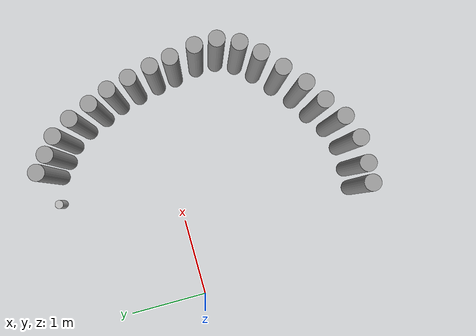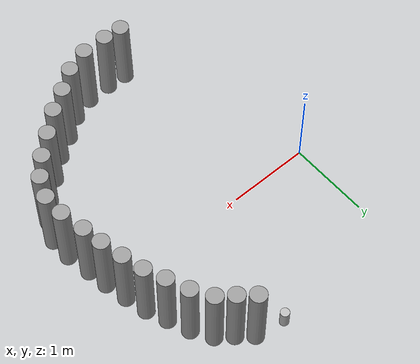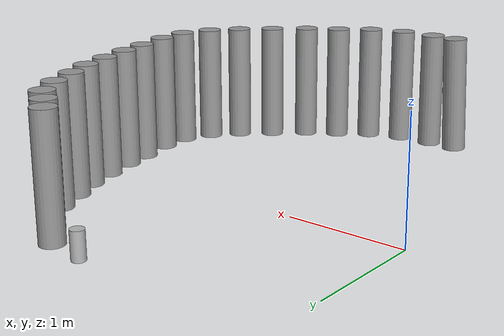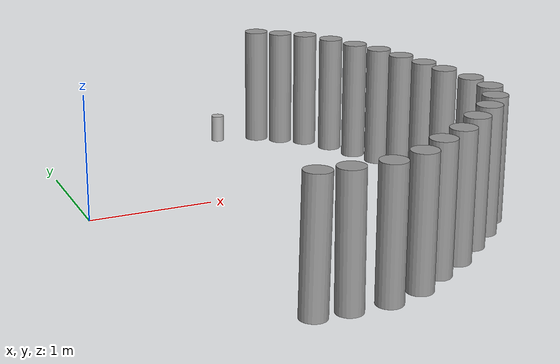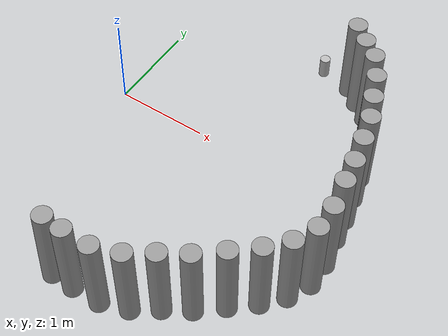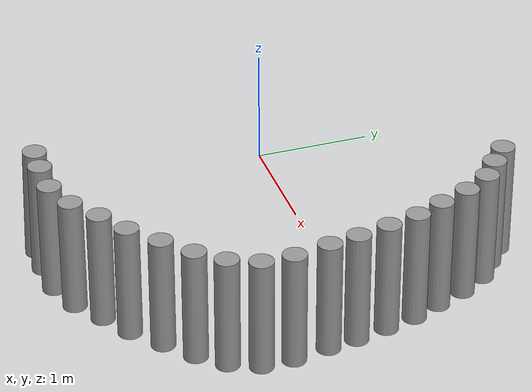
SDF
<sdf version="1.6">
 <world name="default">
  <model name="small_cylinder_0_clone_0">
   <link name="link">
    <inertial>
     <mass>1</mass>
     <inertia><ixx>0.145833</ixx><ixy>0</ixy><ixz>0</ixz><iyy>0.145833</iyy><iyz>0</iyz><izz>0.125</izz></inertia>
    </inertial>
    <visual name="visual">
     <geometry><cylinder><radius>0.1</radius><length>1</length></cylinder></geometry>
     <material>
      <script><name>Gazebo/Grey</name><uri>file://media/materials/scripts/gazebo.material</uri></script>
      <ambient>0.3 0.3 0.3 1</ambient>
      <diffuse>0.7 0.7 0.7 1</diffuse>
      <specular>0.01 0.01 0.01 1</specular>
      <emissive>0 0 0 1</emissive>
      <shader type="vertex"><normal_map>__default__</normal_map></shader>
     </material>
    </visual>
    <collision name="collision">
     <geometry><cylinder><radius>0.1</radius><length>1</length></cylinder></geometry>
     <surface>
      <friction>
       <ode><mu>1</mu><mu2>1</mu2><fdir1>0 0 0</fdir1><slip1>0</slip1><slip2>0</slip2></ode>
       <torsional>
        <coefficient>1</coefficient>
        <patch_radius>0</patch_radius>
        <surface_radius>0</surface_radius>
        <use_patch_radius>1</use_patch_radius>
        <ode><slip>0</slip></ode>
       </torsional>
      </friction>
      <bounce><restitution_coefficient>0</restitution_coefficient><threshold>1e+06</threshold></bounce>
      <contact>
       <collide_without_contact>0</collide_without_contact>
       <collide_without_contact_bitmask>1</collide_without_contact_bitmask>
       <collide_bitmask>1</collide_bitmask>
       <ode>
        <soft_cfm>0</soft_cfm>
        <soft_erp>0.2</soft_erp>
        <kp>1e+13</kp>
        <kd>1</kd>
        <max_vel>0.01</max_vel>
        <min_depth>0</min_depth>
       </ode>
       <bullet>
        <split_impulse>1</split_impulse>
        <split_impulse_penetration_threshold>-0.01</split_impulse_penetration_threshold>
        <soft_cfm>0</soft_cfm>
        <soft_erp>0.2</soft_erp>
        <kp>1e+13</kp>
        <kd>1</kd>
       </bullet>
      </contact>
     </surface>
    </collision>
   </link>
   <static>1</static>
   <pose>2.8271 -1.1924 0.499121 0 6e-06 -0.010915</pose>
  </model>
  <model name="small_cylinder_0_clone_1">
   <link name="link">
    <inertial>
     <mass>1</mass>
     <inertia><ixx>0.145833</ixx><ixy>0</ixy><ixz>0</ixz><iyy>0.145833</iyy><iyz>0</iyz><izz>0.125</izz></inertia>
    </inertial>
    <visual name="visual">
     <geometry><cylinder><radius>0.1</radius><length>1</length></cylinder></geometry>
     <material>
      <script><name>Gazebo/Grey</name><uri>file://media/materials/scripts/gazebo.material</uri></script>
      <ambient>0.3 0.3 0.3 1</ambient>
      <diffuse>0.7 0.7 0.7 1</diffuse>
      <specular>0.01 0.01 0.01 1</specular>
      <emissive>0 0 0 1</emissive>
      <shader type="vertex"><normal_map>__default__</normal_map></shader>
     </material>
    </visual>
    <collision name="collision">
     <geometry><cylinder><radius>0.1</radius><length>1</length></cylinder></geometry>
     <surface>
      <friction>
       <ode><mu>1</mu><mu2>1</mu2><fdir1>0 0 0</fdir1><slip1>0</slip1><slip2>0</slip2></ode>
       <torsional>
        <coefficient>1</coefficient>
        <patch_radius>0</patch_radius>
        <surface_radius>0</surface_radius>
        <use_patch_radius>1</use_patch_radius>
        <ode><slip>0</slip></ode>
       </torsional>
      </friction>
      <bounce><restitution_coefficient>0</restitution_coefficient><threshold>1e+06</threshold></bounce>
      <contact>
       <collide_without_contact>0</collide_without_contact>
       <collide_without_contact_bitmask>1</collide_without_contact_bitmask>
       <collide_bitmask>1</collide_bitmask>
       <ode>
        <soft_cfm>0</soft_cfm>
        <soft_erp>0.2</soft_erp>
        <kp>1e+13</kp>
        <kd>1</kd>
        <max_vel>0.01</max_vel>
        <min_depth>0</min_depth>
       </ode>
       <bullet>
        <split_impulse>1</split_impulse>
        <split_impulse_penetration_threshold>-0.01</split_impulse_penetration_threshold>
        <soft_cfm>0</soft_cfm>
        <soft_erp>0.2</soft_erp>
        <kp>1e+13</kp>
        <kd>1</kd>
       </bullet>
      </contact>
     </surface>
    </collision>
   </link>
   <static>1</static>
   <pose>2.64692 -1.39777 0.499121 0 6e-06 -0.010887</pose>
  </model>
  <model name="small_cylinder_0_clone_2">
   <link name="link">
    <inertial>
     <mass>1</mass>
     <inertia><ixx>0.145833</ixx><ixy>0</ixy><ixz>0</ixz><iyy>0.145833</iyy><iyz>0</iyz><izz>0.125</izz></inertia>
    </inertial>
    <visual name="visual">
     <geometry><cylinder><radius>0.1</radius><length>1</length></cylinder></geometry>
     <material>
      <script><name>Gazebo/Grey</name><uri>file://media/materials/scripts/gazebo.material</uri></script>
      <ambient>0.3 0.3 0.3 1</ambient>
      <diffuse>0.7 0.7 0.7 1</diffuse>
      <specular>0.01 0.01 0.01 1</specular>
      <emissive>0 0 0 1</emissive>
      <shader type="vertex"><normal_map>__default__</normal_map></shader>
     </material>
    </visual>
    <collision name="collision">
     <geometry><cylinder><radius>0.1</radius><length>1</length></cylinder></geometry>
     <surface>
      <friction>
       <ode><mu>1</mu><mu2>1</mu2><fdir1>0 0 0</fdir1><slip1>0</slip1><slip2>0</slip2></ode>
       <torsional>
        <coefficient>1</coefficient>
        <patch_radius>0</patch_radius>
        <surface_radius>0</surface_radius>
        <use_patch_radius>1</use_patch_radius>
        <ode><slip>0</slip></ode>
       </torsional>
      </friction>
      <bounce><restitution_coefficient>0</restitution_coefficient><threshold>1e+06</threshold></bounce>
      <contact>
       <collide_without_contact>0</collide_without_contact>
       <collide_without_contact_bitmask>1</collide_without_contact_bitmask>
       <collide_bitmask>1</collide_bitmask>
       <ode>
        <soft_cfm>0</soft_cfm>
        <soft_erp>0.2</soft_erp>
        <kp>1e+13</kp>
        <kd>1</kd>
        <max_vel>0.01</max_vel>
        <min_depth>0</min_depth>
       </ode>
       <bullet>
        <split_impulse>1</split_impulse>
        <split_impulse_penetration_threshold>-0.01</split_impulse_penetration_threshold>
        <soft_cfm>0</soft_cfm>
        <soft_erp>0.2</soft_erp>
        <kp>1e+13</kp>
        <kd>1</kd>
       </bullet>
      </contact>
     </surface>
    </collision>
   </link>
   <static>1</static>
   <pose>2.418 -1.59621 0.499121 0 6e-06 -0.01088</pose>
  </model>
  <model name="small_cylinder_0_clone_3">
   <link name="link">
    <inertial>
     <mass>1</mass>
     <inertia><ixx>0.145833</ixx><ixy>0</ixy><ixz>0</ixz><iyy>0.145833</iyy><iyz>0</iyz><izz>0.125</izz></inertia>
    </inertial>
    <visual name="visual">
     <geometry><cylinder><radius>0.1</radius><length>1</length></cylinder></geometry>
     <material>
      <script><name>Gazebo/Grey</name><uri>file://media/materials/scripts/gazebo.material</uri></script>
      <ambient>0.3 0.3 0.3 1</ambient>
      <diffuse>0.7 0.7 0.7 1</diffuse>
      <specular>0.01 0.01 0.01 1</specular>
      <emissive>0 0 0 1</emissive>
      <shader type="vertex"><normal_map>__default__</normal_map></shader>
     </material>
    </visual>
    <collision name="collision">
     <geometry><cylinder><radius>0.1</radius><length>1</length></cylinder></geometry>
     <surface>
      <friction>
       <ode><mu>1</mu><mu2>1</mu2><fdir1>0 0 0</fdir1><slip1>0</slip1><slip2>0</slip2></ode>
       <torsional>
        <coefficient>1</coefficient>
        <patch_radius>0</patch_radius>
        <surface_radius>0</surface_radius>
        <use_patch_radius>1</use_patch_radius>
        <ode><slip>0</slip></ode>
       </torsional>
      </friction>
      <bounce><restitution_coefficient>0</restitution_coefficient><threshold>1e+06</threshold></bounce>
      <contact>
       <collide_without_contact>0</collide_without_contact>
       <collide_without_contact_bitmask>1</collide_without_contact_bitmask>
       <collide_bitmask>1</collide_bitmask>
       <ode>
        <soft_cfm>0</soft_cfm>
        <soft_erp>0.2</soft_erp>
        <kp>1e+13</kp>
        <kd>1</kd>
        <max_vel>0.01</max_vel>
        <min_depth>0</min_depth>
       </ode>
       <bullet>
        <split_impulse>1</split_impulse>
        <split_impulse_penetration_threshold>-0.01</split_impulse_penetration_threshold>
        <soft_cfm>0</soft_cfm>
        <soft_erp>0.2</soft_erp>
        <kp>1e+13</kp>
        <kd>1</kd>
       </bullet>
      </contact>
     </surface>
    </collision>
   </link>
   <static>1</static>
   <pose>2.17816 -1.80058 0.499121 0 6e-06 -0.010876</pose>
  </model>
  <model name="small_cylinder_0_clone_4">
   <link name="link">
    <inertial>
     <mass>1</mass>
     <inertia><ixx>0.145833</ixx><ixy>0</ixy><ixz>0</ixz><iyy>0.145833</iyy><iyz>0</iyz><izz>0.125</izz></inertia>
    </inertial>
    <visual name="visual">
     <geometry><cylinder><radius>0.1</radius><length>1</length></cylinder></geometry>
     <material>
      <script><name>Gazebo/Grey</name><uri>file://media/materials/scripts/gazebo.material</uri></script>
      <ambient>0.3 0.3 0.3 1</ambient>
      <diffuse>0.7 0.7 0.7 1</diffuse>
      <specular>0.01 0.01 0.01 1</specular>
      <emissive>0 0 0 1</emissive>
      <shader type="vertex"><normal_map>__default__</normal_map></shader>
     </material>
    </visual>
    <collision name="collision">
     <geometry><cylinder><radius>0.1</radius><length>1</length></cylinder></geometry>
     <surface>
      <friction>
       <ode><mu>1</mu><mu2>1</mu2><fdir1>0 0 0</fdir1><slip1>0</slip1><slip2>0</slip2></ode>
       <torsional>
        <coefficient>1</coefficient>
        <patch_radius>0</patch_radius>
        <surface_radius>0</surface_radius>
        <use_patch_radius>1</use_patch_radius>
        <ode><slip>0</slip></ode>
       </torsional>
      </friction>
      <bounce><restitution_coefficient>0</restitution_coefficient><threshold>1e+06</threshold></bounce>
      <contact>
       <collide_without_contact>0</collide_without_contact>
       <collide_without_contact_bitmask>1</collide_without_contact_bitmask>
       <collide_bitmask>1</collide_bitmask>
       <ode>
        <soft_cfm>0</soft_cfm>
        <soft_erp>0.2</soft_erp>
        <kp>1e+13</kp>
        <kd>1</kd>
        <max_vel>0.01</max_vel>
        <min_depth>0</min_depth>
       </ode>
       <bullet>
        <split_impulse>1</split_impulse>
        <split_impulse_penetration_threshold>-0.01</split_impulse_penetration_threshold>
        <soft_cfm>0</soft_cfm>
        <soft_erp>0.2</soft_erp>
        <kp>1e+13</kp>
        <kd>1</kd>
       </bullet>
      </contact>
     </surface>
    </collision>
   </link>
   <static>1</static>
   <pose>1.92933 -1.95531 0.499121 0 6e-06 -0.01088</pose>
  </model>
  <model name="small_cylinder_0_clone_5">
   <link name="link">
    <inertial>
     <mass>1</mass>
     <inertia><ixx>0.145833</ixx><ixy>0</ixy><ixz>0</ixz><iyy>0.145833</iyy><iyz>0</iyz><izz>0.125</izz></inertia>
    </inertial>
    <visual name="visual">
     <geometry><cylinder><radius>0.1</radius><length>1</length></cylinder></geometry>
     <material>
      <script><name>Gazebo/Grey</name><uri>file://media/materials/scripts/gazebo.material</uri></script>
      <ambient>0.3 0.3 0.3 1</ambient>
      <diffuse>0.7 0.7 0.7 1</diffuse>
      <specular>0.01 0.01 0.01 1</specular>
      <emissive>0 0 0 1</emissive>
      <shader type="vertex"><normal_map>__default__</normal_map></shader>
     </material>
    </visual>
    <collision name="collision">
     <geometry><cylinder><radius>0.1</radius><length>1</length></cylinder></geometry>
     <surface>
      <friction>
       <ode><mu>1</mu><mu2>1</mu2><fdir1>0 0 0</fdir1><slip1>0</slip1><slip2>0</slip2></ode>
       <torsional>
        <coefficient>1</coefficient>
        <patch_radius>0</patch_radius>
        <surface_radius>0</surface_radius>
        <use_patch_radius>1</use_patch_radius>
        <ode><slip>0</slip></ode>
       </torsional>
      </friction>
      <bounce><restitution_coefficient>0</restitution_coefficient><threshold>1e+06</threshold></bounce>
      <contact>
       <collide_without_contact>0</collide_without_contact>
       <collide_without_contact_bitmask>1</collide_without_contact_bitmask>
       <collide_bitmask>1</collide_bitmask>
       <ode>
        <soft_cfm>0</soft_cfm>
        <soft_erp>0.2</soft_erp>
        <kp>1e+13</kp>
        <kd>1</kd>
        <max_vel>0.01</max_vel>
        <min_depth>0</min_depth>
       </ode>
       <bullet>
        <split_impulse>1</split_impulse>
        <split_impulse_penetration_threshold>-0.01</split_impulse_penetration_threshold>
        <soft_cfm>0</soft_cfm>
        <soft_erp>0.2</soft_erp>
        <kp>1e+13</kp>
        <kd>1</kd>
       </bullet>
      </contact>
     </surface>
    </collision>
   </link>
   <static>1</static>
   <pose>1.68697 -2.12406 0.499121 -0 6e-06 -0.0109</pose>
  </model>
  <model name="small_cylinder_0_clone_6">
   <link name="link">
    <inertial>
     <mass>1</mass>
     <inertia><ixx>0.145833</ixx><ixy>0</ixy><ixz>0</ixz><iyy>0.145833</iyy><iyz>0</iyz><izz>0.125</izz></inertia>
    </inertial>
    <visual name="visual">
     <geometry><cylinder><radius>0.1</radius><length>1</length></cylinder></geometry>
     <material>
      <script><name>Gazebo/Grey</name><uri>file://media/materials/scripts/gazebo.material</uri></script>
      <ambient>0.3 0.3 0.3 1</ambient>
      <diffuse>0.7 0.7 0.7 1</diffuse>
      <specular>0.01 0.01 0.01 1</specular>
      <emissive>0 0 0 1</emissive>
      <shader type="vertex"><normal_map>__default__</normal_map></shader>
     </material>
    </visual>
    <collision name="collision">
     <geometry><cylinder><radius>0.1</radius><length>1</length></cylinder></geometry>
     <surface>
      <friction>
       <ode><mu>1</mu><mu2>1</mu2><fdir1>0 0 0</fdir1><slip1>0</slip1><slip2>0</slip2></ode>
       <torsional>
        <coefficient>1</coefficient>
        <patch_radius>0</patch_radius>
        <surface_radius>0</surface_radius>
        <use_patch_radius>1</use_patch_radius>
        <ode><slip>0</slip></ode>
       </torsional>
      </friction>
      <bounce><restitution_coefficient>0</restitution_coefficient><threshold>1e+06</threshold></bounce>
      <contact>
       <collide_without_contact>0</collide_without_contact>
       <collide_without_contact_bitmask>1</collide_without_contact_bitmask>
       <collide_bitmask>1</collide_bitmask>
       <ode>
        <soft_cfm>0</soft_cfm>
        <soft_erp>0.2</soft_erp>
        <kp>1e+13</kp>
        <kd>1</kd>
        <max_vel>0.01</max_vel>
        <min_depth>0</min_depth>
       </ode>
       <bullet>
        <split_impulse>1</split_impulse>
        <split_impulse_penetration_threshold>-0.01</split_impulse_penetration_threshold>
        <soft_cfm>0</soft_cfm>
        <soft_erp>0.2</soft_erp>
        <kp>1e+13</kp>
        <kd>1</kd>
       </bullet>
      </contact>
     </surface>
    </collision>
   </link>
   <static>1</static>
   <pose>1.40397 -2.22186 0.499121 0 -6e-06 0.008928</pose>
  </model>
  <model name="small_cylinder_0_clone_7">
   <link name="link">
    <inertial>
     <mass>1</mass>
     <inertia><ixx>0.145833</ixx><ixy>0</ixy><ixz>0</ixz><iyy>0.145833</iyy><iyz>0</iyz><izz>0.125</izz></inertia>
    </inertial>
    <visual name="visual">
     <geometry><cylinder><radius>0.1</radius><length>1</length></cylinder></geometry>
     <material>
      <script><name>Gazebo/Grey</name><uri>file://media/materials/scripts/gazebo.material</uri></script>
      <ambient>0.3 0.3 0.3 1</ambient>
      <diffuse>0.7 0.7 0.7 1</diffuse>
      <specular>0.01 0.01 0.01 1</specular>
      <emissive>0 0 0 1</emissive>
      <shader type="vertex"><normal_map>__default__</normal_map></shader>
     </material>
    </visual>
    <collision name="collision">
     <geometry><cylinder><radius>0.1</radius><length>1</length></cylinder></geometry>
     <surface>
      <friction>
       <ode><mu>1</mu><mu2>1</mu2><fdir1>0 0 0</fdir1><slip1>0</slip1><slip2>0</slip2></ode>
       <torsional>
        <coefficient>1</coefficient>
        <patch_radius>0</patch_radius>
        <surface_radius>0</surface_radius>
        <use_patch_radius>1</use_patch_radius>
        <ode><slip>0</slip></ode>
       </torsional>
      </friction>
      <bounce><restitution_coefficient>0</restitution_coefficient><threshold>1e+06</threshold></bounce>
      <contact>
       <collide_without_contact>0</collide_without_contact>
       <collide_without_contact_bitmask>1</collide_without_contact_bitmask>
       <collide_bitmask>1</collide_bitmask>
       <ode>
        <soft_cfm>0</soft_cfm>
        <soft_erp>0.2</soft_erp>
        <kp>1e+13</kp>
        <kd>1</kd>
        <max_vel>0.01</max_vel>
        <min_depth>0</min_depth>
       </ode>
       <bullet>
        <split_impulse>1</split_impulse>
        <split_impulse_penetration_threshold>-0.01</split_impulse_penetration_threshold>
        <soft_cfm>0</soft_cfm>
        <soft_erp>0.2</soft_erp>
        <kp>1e+13</kp>
        <kd>1</kd>
       </bullet>
      </contact>
     </surface>
    </collision>
   </link>
   <static>1</static>
   <pose>1.10145 -2.22877 0.50125 -0.010495 -0.00771 -0.658429</pose>
  </model>
  <model name="small_cylinder_0_clone_8">
   <link name="link">
    <inertial>
     <mass>1</mass>
     <inertia><ixx>0.145833</ixx><ixy>0</ixy><ixz>0</ixz><iyy>0.145833</iyy><iyz>0</iyz><izz>0.125</izz></inertia>
    </inertial>
    <visual name="visual">
     <geometry><cylinder><radius>0.1</radius><length>1</length></cylinder></geometry>
     <material>
      <script><name>Gazebo/Grey</name><uri>file://media/materials/scripts/gazebo.material</uri></script>
      <ambient>0.3 0.3 0.3 1</ambient>
      <diffuse>0.7 0.7 0.7 1</diffuse>
      <specular>0.01 0.01 0.01 1</specular>
      <emissive>0 0 0 1</emissive>
      <shader type="vertex"><normal_map>__default__</normal_map></shader>
     </material>
    </visual>
    <collision name="collision">
     <geometry><cylinder><radius>0.1</radius><length>1</length></cylinder></geometry>
     <surface>
      <friction>
       <ode><mu>1</mu><mu2>1</mu2><fdir1>0 0 0</fdir1><slip1>0</slip1><slip2>0</slip2></ode>
       <torsional>
        <coefficient>1</coefficient>
        <patch_radius>0</patch_radius>
        <surface_radius>0</surface_radius>
        <use_patch_radius>1</use_patch_radius>
        <ode><slip>0</slip></ode>
       </torsional>
      </friction>
      <bounce><restitution_coefficient>0</restitution_coefficient><threshold>1e+06</threshold></bounce>
      <contact>
       <collide_without_contact>0</collide_without_contact>
       <collide_without_contact_bitmask>1</collide_without_contact_bitmask>
       <collide_bitmask>1</collide_bitmask>
       <ode>
        <soft_cfm>0</soft_cfm>
        <soft_erp>0.2</soft_erp>
        <kp>1e+13</kp>
        <kd>1</kd>
        <max_vel>0.01</max_vel>
        <min_depth>0</min_depth>
       </ode>
       <bullet>
        <split_impulse>1</split_impulse>
        <split_impulse_penetration_threshold>-0.01</split_impulse_penetration_threshold>
        <soft_cfm>0</soft_cfm>
        <soft_erp>0.2</soft_erp>
        <kp>1e+13</kp>
        <kd>1</kd>
       </bullet>
      </contact>
     </surface>
    </collision>
   </link>
   <static>1</static>
   <pose>0.859339 -2.21794 0.50312 -0.007979 -0.033217 -2.34045</pose>
  </model>
  <model name="beer_clone">
   <link name="link">
    <pose>0 0 0.115 0 -0 0</pose>
    <inertial>
     <mass>0.39</mass>
     <inertia><ixx>0.00058</ixx><ixy>0</ixy><ixz>0</ixz><iyy>0.00058</iyy><iyz>0</iyz><izz>0.00019</izz></inertia>
    </inertial>
    <collision name="collision">
     <geometry><cylinder><radius>0.055</radius><length>0.23</length></cylinder></geometry>
    </collision>
    <visual name="visual">
     <geometry><cylinder><radius>0.055</radius><length>0.23</length></cylinder></geometry>
     <material>
      <script>
       <uri>model://beer/materials/scripts</uri>
       <uri>model://beer/materials/textures</uri>
       <name>Beer/Diffuse</name>
      </script>
     </material>
    </visual>
   </link>
   <pose>1.64455 1.50495 -0.00088 6e-06 -5.1e-05 1.64738</pose>
  </model>
  <model name="small_cylinder_0_clone_clone_20">
   <link name="link">
    <inertial>
     <mass>1</mass>
     <inertia><ixx>0.145833</ixx><ixy>0</ixy><ixz>0</ixz><iyy>0.145833</iyy><iyz>0</iyz><izz>0.125</izz></inertia>
    </inertial>
    <visual name="visual">
     <geometry><cylinder><radius>0.1</radius><length>1</length></cylinder></geometry>
     <material>
      <script><name>Gazebo/Grey</name><uri>file://media/materials/scripts/gazebo.material</uri></script>
      <ambient>0.3 0.3 0.3 1</ambient>
      <diffuse>0.7 0.7 0.7 1</diffuse>
      <specular>0.01 0.01 0.01 1</specular>
      <emissive>0 0 0 1</emissive>
      <shader type="vertex"><normal_map>__default__</normal_map></shader>
     </material>
    </visual>
    <collision name="collision">
     <geometry><cylinder><radius>0.1</radius><length>1</length></cylinder></geometry>
     <surface>
      <friction>
       <ode><mu>1</mu><mu2>1</mu2><fdir1>0 0 0</fdir1><slip1>0</slip1><slip2>0</slip2></ode>
       <torsional>
        <coefficient>1</coefficient>
        <patch_radius>0</patch_radius>
        <surface_radius>0</surface_radius>
        <use_patch_radius>1</use_patch_radius>
        <ode><slip>0</slip></ode>
       </torsional>
      </friction>
      <bounce><restitution_coefficient>0</restitution_coefficient><threshold>1e+06</threshold></bounce>
      <contact>
       <collide_without_contact>0</collide_without_contact>
       <collide_without_contact_bitmask>1</collide_without_contact_bitmask>
       <collide_bitmask>1</collide_bitmask>
       <ode>
        <soft_cfm>0</soft_cfm>
        <soft_erp>0.2</soft_erp>
        <kp>1e+13</kp>
        <kd>1</kd>
        <max_vel>0.01</max_vel>
        <min_depth>0</min_depth>
       </ode>
       <bullet>
        <split_impulse>1</split_impulse>
        <split_impulse_penetration_threshold>-0.01</split_impulse_penetration_threshold>
        <soft_cfm>0</soft_cfm>
        <soft_erp>0.2</soft_erp>
        <kp>1e+13</kp>
        <kd>1</kd>
       </bullet>
      </contact>
     </surface>
    </collision>
   </link>
   <static>1</static>
   <pose>2.93611 -0.950237 0.499121 0 6e-06 -0.009753</pose>
  </model>
  <model name="small_cylinder_0_clone_clone_21">
   <link name="link">
    <inertial>
     <mass>1</mass>
     <inertia><ixx>0.145833</ixx><ixy>0</ixy><ixz>0</ixz><iyy>0.145833</iyy><iyz>0</iyz><izz>0.125</izz></inertia>
    </inertial>
    <visual name="visual">
     <geometry><cylinder><radius>0.1</radius><length>1</length></cylinder></geometry>
     <material>
      <script><name>Gazebo/Grey</name><uri>file://media/materials/scripts/gazebo.material</uri></script>
      <ambient>0.3 0.3 0.3 1</ambient>
      <diffuse>0.7 0.7 0.7 1</diffuse>
      <specular>0.01 0.01 0.01 1</specular>
      <emissive>0 0 0 1</emissive>
      <shader type="vertex"><normal_map>__default__</normal_map></shader>
     </material>
    </visual>
    <collision name="collision">
     <geometry><cylinder><radius>0.1</radius><length>1</length></cylinder></geometry>
     <surface>
      <friction>
       <ode><mu>1</mu><mu2>1</mu2><fdir1>0 0 0</fdir1><slip1>0</slip1><slip2>0</slip2></ode>
       <torsional>
        <coefficient>1</coefficient>
        <patch_radius>0</patch_radius>
        <surface_radius>0</surface_radius>
        <use_patch_radius>1</use_patch_radius>
        <ode><slip>0</slip></ode>
       </torsional>
      </friction>
      <bounce><restitution_coefficient>0</restitution_coefficient><threshold>1e+06</threshold></bounce>
      <contact>
       <collide_without_contact>0</collide_without_contact>
       <collide_without_contact_bitmask>1</collide_without_contact_bitmask>
       <collide_bitmask>1</collide_bitmask>
       <ode>
        <soft_cfm>0</soft_cfm>
        <soft_erp>0.2</soft_erp>
        <kp>1e+13</kp>
        <kd>1</kd>
        <max_vel>0.01</max_vel>
        <min_depth>0</min_depth>
       </ode>
       <bullet>
        <split_impulse>1</split_impulse>
        <split_impulse_penetration_threshold>-0.01</split_impulse_penetration_threshold>
        <soft_cfm>0</soft_cfm>
        <soft_erp>0.2</soft_erp>
        <kp>1e+13</kp>
        <kd>1</kd>
       </bullet>
      </contact>
     </surface>
    </collision>
   </link>
   <static>1</static>
   <pose>2.93258 -0.681478 0.499121 -0 6e-06 -0.009707</pose>
  </model>
  <model name="small_cylinder_0_clone_clone_22">
   <link name="link">
    <inertial>
     <mass>1</mass>
     <inertia><ixx>0.145833</ixx><ixy>0</ixy><ixz>0</ixz><iyy>0.145833</iyy><iyz>0</iyz><izz>0.125</izz></inertia>
    </inertial>
    <visual name="visual">
     <geometry><cylinder><radius>0.1</radius><length>1</length></cylinder></geometry>
     <material>
      <script><name>Gazebo/Grey</name><uri>file://media/materials/scripts/gazebo.material</uri></script>
      <ambient>0.3 0.3 0.3 1</ambient>
      <diffuse>0.7 0.7 0.7 1</diffuse>
      <specular>0.01 0.01 0.01 1</specular>
      <emissive>0 0 0 1</emissive>
      <shader type="vertex"><normal_map>__default__</normal_map></shader>
     </material>
    </visual>
    <collision name="collision">
     <geometry><cylinder><radius>0.1</radius><length>1</length></cylinder></geometry>
     <surface>
      <friction>
       <ode><mu>1</mu><mu2>1</mu2><fdir1>0 0 0</fdir1><slip1>0</slip1><slip2>0</slip2></ode>
       <torsional>
        <coefficient>1</coefficient>
        <patch_radius>0</patch_radius>
        <surface_radius>0</surface_radius>
        <use_patch_radius>1</use_patch_radius>
        <ode><slip>0</slip></ode>
       </torsional>
      </friction>
      <bounce><restitution_coefficient>0</restitution_coefficient><threshold>1e+06</threshold></bounce>
      <contact>
       <collide_without_contact>0</collide_without_contact>
       <collide_without_contact_bitmask>1</collide_without_contact_bitmask>
       <collide_bitmask>1</collide_bitmask>
       <ode>
        <soft_cfm>0</soft_cfm>
        <soft_erp>0.2</soft_erp>
        <kp>1e+13</kp>
        <kd>1</kd>
        <max_vel>0.01</max_vel>
        <min_depth>0</min_depth>
       </ode>
       <bullet>
        <split_impulse>1</split_impulse>
        <split_impulse_penetration_threshold>-0.01</split_impulse_penetration_threshold>
        <soft_cfm>0</soft_cfm>
        <soft_erp>0.2</soft_erp>
        <kp>1e+13</kp>
        <kd>1</kd>
       </bullet>
      </contact>
     </surface>
    </collision>
   </link>
   <static>1</static>
   <pose>2.87517 -0.375466 0.499121 -0 6e-06 -0.009645</pose>
  </model>
  <model name="small_cylinder_0_clone_clone_23">
   <link name="link">
    <inertial>
     <mass>1</mass>
     <inertia><ixx>0.145833</ixx><ixy>0</ixy><ixz>0</ixz><iyy>0.145833</iyy><iyz>0</iyz><izz>0.125</izz></inertia>
    </inertial>
    <visual name="visual">
     <geometry><cylinder><radius>0.1</radius><length>1</length></cylinder></geometry>
     <material>
      <script><name>Gazebo/Grey</name><uri>file://media/materials/scripts/gazebo.material</uri></script>
      <ambient>0.3 0.3 0.3 1</ambient>
      <diffuse>0.7 0.7 0.7 1</diffuse>
      <specular>0.01 0.01 0.01 1</specular>
      <emissive>0 0 0 1</emissive>
      <shader type="vertex"><normal_map>__default__</normal_map></shader>
     </material>
    </visual>
    <collision name="collision">
     <geometry><cylinder><radius>0.1</radius><length>1</length></cylinder></geometry>
     <surface>
      <friction>
       <ode><mu>1</mu><mu2>1</mu2><fdir1>0 0 0</fdir1><slip1>0</slip1><slip2>0</slip2></ode>
       <torsional>
        <coefficient>1</coefficient>
        <patch_radius>0</patch_radius>
        <surface_radius>0</surface_radius>
        <use_patch_radius>1</use_patch_radius>
        <ode><slip>0</slip></ode>
       </torsional>
      </friction>
      <bounce><restitution_coefficient>0</restitution_coefficient><threshold>1e+06</threshold></bounce>
      <contact>
       <collide_without_contact>0</collide_without_contact>
       <collide_without_contact_bitmask>1</collide_without_contact_bitmask>
       <collide_bitmask>1</collide_bitmask>
       <ode>
        <soft_cfm>0</soft_cfm>
        <soft_erp>0.2</soft_erp>
        <kp>1e+13</kp>
        <kd>1</kd>
        <max_vel>0.01</max_vel>
        <min_depth>0</min_depth>
       </ode>
       <bullet>
        <split_impulse>1</split_impulse>
        <split_impulse_penetration_threshold>-0.01</split_impulse_penetration_threshold>
        <soft_cfm>0</soft_cfm>
        <soft_erp>0.2</soft_erp>
        <kp>1e+13</kp>
        <kd>1</kd>
       </bullet>
      </contact>
     </surface>
    </collision>
   </link>
   <static>1</static>
   <pose>2.8331 -0.124482 0.499121 0 6e-06 -0.009583</pose>
  </model>
  <model name="small_cylinder_0_clone_clone_24">
   <link name="link">
    <inertial>
     <mass>1</mass>
     <inertia><ixx>0.145833</ixx><ixy>0</ixy><ixz>0</ixz><iyy>0.145833</iyy><iyz>0</iyz><izz>0.125</izz></inertia>
    </inertial>
    <visual name="visual">
     <geometry><cylinder><radius>0.1</radius><length>1</length></cylinder></geometry>
     <material>
      <script><name>Gazebo/Grey</name><uri>file://media/materials/scripts/gazebo.material</uri></script>
      <ambient>0.3 0.3 0.3 1</ambient>
      <diffuse>0.7 0.7 0.7 1</diffuse>
      <specular>0.01 0.01 0.01 1</specular>
      <emissive>0 0 0 1</emissive>
      <shader type="vertex"><normal_map>__default__</normal_map></shader>
     </material>
    </visual>
    <collision name="collision">
     <geometry><cylinder><radius>0.1</radius><length>1</length></cylinder></geometry>
     <surface>
      <friction>
       <ode><mu>1</mu><mu2>1</mu2><fdir1>0 0 0</fdir1><slip1>0</slip1><slip2>0</slip2></ode>
       <torsional>
        <coefficient>1</coefficient>
        <patch_radius>0</patch_radius>
        <surface_radius>0</surface_radius>
        <use_patch_radius>1</use_patch_radius>
        <ode><slip>0</slip></ode>
       </torsional>
      </friction>
      <bounce><restitution_coefficient>0</restitution_coefficient><threshold>1e+06</threshold></bounce>
      <contact>
       <collide_without_contact>0</collide_without_contact>
       <collide_without_contact_bitmask>1</collide_without_contact_bitmask>
       <collide_bitmask>1</collide_bitmask>
       <ode>
        <soft_cfm>0</soft_cfm>
        <soft_erp>0.2</soft_erp>
        <kp>1e+13</kp>
        <kd>1</kd>
        <max_vel>0.01</max_vel>
        <min_depth>0</min_depth>
       </ode>
       <bullet>
        <split_impulse>1</split_impulse>
        <split_impulse_penetration_threshold>-0.01</split_impulse_penetration_threshold>
        <soft_cfm>0</soft_cfm>
        <soft_erp>0.2</soft_erp>
        <kp>1e+13</kp>
        <kd>1</kd>
       </bullet>
      </contact>
     </surface>
    </collision>
   </link>
   <static>1</static>
   <pose>2.77154 0.150332 0.499121 0 6e-06 -0.009529</pose>
  </model>
  <model name="small_cylinder_0_clone_clone_25">
   <link name="link">
    <inertial>
     <mass>1</mass>
     <inertia><ixx>0.145833</ixx><ixy>0</ixy><ixz>0</ixz><iyy>0.145833</iyy><iyz>0</iyz><izz>0.125</izz></inertia>
    </inertial>
    <visual name="visual">
     <geometry><cylinder><radius>0.1</radius><length>1</length></cylinder></geometry>
     <material>
      <script><name>Gazebo/Grey</name><uri>file://media/materials/scripts/gazebo.material</uri></script>
      <ambient>0.3 0.3 0.3 1</ambient>
      <diffuse>0.7 0.7 0.7 1</diffuse>
      <specular>0.01 0.01 0.01 1</specular>
      <emissive>0 0 0 1</emissive>
      <shader type="vertex"><normal_map>__default__</normal_map></shader>
     </material>
    </visual>
    <collision name="collision">
     <geometry><cylinder><radius>0.1</radius><length>1</length></cylinder></geometry>
     <surface>
      <friction>
       <ode><mu>1</mu><mu2>1</mu2><fdir1>0 0 0</fdir1><slip1>0</slip1><slip2>0</slip2></ode>
       <torsional>
        <coefficient>1</coefficient>
        <patch_radius>0</patch_radius>
        <surface_radius>0</surface_radius>
        <use_patch_radius>1</use_patch_radius>
        <ode><slip>0</slip></ode>
       </torsional>
      </friction>
      <bounce><restitution_coefficient>0</restitution_coefficient><threshold>1e+06</threshold></bounce>
      <contact>
       <collide_without_contact>0</collide_without_contact>
       <collide_without_contact_bitmask>1</collide_without_contact_bitmask>
       <collide_bitmask>1</collide_bitmask>
       <ode>
        <soft_cfm>0</soft_cfm>
        <soft_erp>0.2</soft_erp>
        <kp>1e+13</kp>
        <kd>1</kd>
        <max_vel>0.01</max_vel>
        <min_depth>0</min_depth>
       </ode>
       <bullet>
        <split_impulse>1</split_impulse>
        <split_impulse_penetration_threshold>-0.01</split_impulse_penetration_threshold>
        <soft_cfm>0</soft_cfm>
        <soft_erp>0.2</soft_erp>
        <kp>1e+13</kp>
        <kd>1</kd>
       </bullet>
      </contact>
     </surface>
    </collision>
   </link>
   <static>1</static>
   <pose>2.70366 0.415542 0.499121 0 6e-06 -0.009482</pose>
  </model>
  <model name="small_cylinder_0_clone_clone_26">
   <link name="link">
    <inertial>
     <mass>1</mass>
     <inertia><ixx>0.145833</ixx><ixy>0</ixy><ixz>0</ixz><iyy>0.145833</iyy><iyz>0</iyz><izz>0.125</izz></inertia>
    </inertial>
    <visual name="visual">
     <geometry><cylinder><radius>0.1</radius><length>1</length></cylinder></geometry>
     <material>
      <script><name>Gazebo/Grey</name><uri>file://media/materials/scripts/gazebo.material</uri></script>
      <ambient>0.3 0.3 0.3 1</ambient>
      <diffuse>0.7 0.7 0.7 1</diffuse>
      <specular>0.01 0.01 0.01 1</specular>
      <emissive>0 0 0 1</emissive>
      <shader type="vertex"><normal_map>__default__</normal_map></shader>
     </material>
    </visual>
    <collision name="collision">
     <geometry><cylinder><radius>0.1</radius><length>1</length></cylinder></geometry>
     <surface>
      <friction>
       <ode><mu>1</mu><mu2>1</mu2><fdir1>0 0 0</fdir1><slip1>0</slip1><slip2>0</slip2></ode>
       <torsional>
        <coefficient>1</coefficient>
        <patch_radius>0</patch_radius>
        <surface_radius>0</surface_radius>
        <use_patch_radius>1</use_patch_radius>
        <ode><slip>0</slip></ode>
       </torsional>
      </friction>
      <bounce><restitution_coefficient>0</restitution_coefficient><threshold>1e+06</threshold></bounce>
      <contact>
       <collide_without_contact>0</collide_without_contact>
       <collide_without_contact_bitmask>1</collide_without_contact_bitmask>
       <collide_bitmask>1</collide_bitmask>
       <ode>
        <soft_cfm>0</soft_cfm>
        <soft_erp>0.2</soft_erp>
        <kp>1e+13</kp>
        <kd>1</kd>
        <max_vel>0.01</max_vel>
        <min_depth>0</min_depth>
       </ode>
       <bullet>
        <split_impulse>1</split_impulse>
        <split_impulse_penetration_threshold>-0.01</split_impulse_penetration_threshold>
        <soft_cfm>0</soft_cfm>
        <soft_erp>0.2</soft_erp>
        <kp>1e+13</kp>
        <kd>1</kd>
       </bullet>
      </contact>
     </surface>
    </collision>
   </link>
   <static>1</static>
   <pose>2.5999 0.657332 0.499121 -0 6e-06 -0.009421</pose>
  </model>
  <model name="small_cylinder_0_clone_clone_27">
   <link name="link">
    <inertial>
     <mass>1</mass>
     <inertia><ixx>0.145833</ixx><ixy>0</ixy><ixz>0</ixz><iyy>0.145833</iyy><iyz>0</iyz><izz>0.125</izz></inertia>
    </inertial>
    <visual name="visual">
     <geometry><cylinder><radius>0.1</radius><length>1</length></cylinder></geometry>
     <material>
      <script><name>Gazebo/Grey</name><uri>file://media/materials/scripts/gazebo.material</uri></script>
      <ambient>0.3 0.3 0.3 1</ambient>
      <diffuse>0.7 0.7 0.7 1</diffuse>
      <specular>0.01 0.01 0.01 1</specular>
      <emissive>0 0 0 1</emissive>
      <shader type="vertex"><normal_map>__default__</normal_map></shader>
     </material>
    </visual>
    <collision name="collision">
     <geometry><cylinder><radius>0.1</radius><length>1</length></cylinder></geometry>
     <surface>
      <friction>
       <ode><mu>1</mu><mu2>1</mu2><fdir1>0 0 0</fdir1><slip1>0</slip1><slip2>0</slip2></ode>
       <torsional>
        <coefficient>1</coefficient>
        <patch_radius>0</patch_radius>
        <surface_radius>0</surface_radius>
        <use_patch_radius>1</use_patch_radius>
        <ode><slip>0</slip></ode>
       </torsional>
      </friction>
      <bounce><restitution_coefficient>0</restitution_coefficient><threshold>1e+06</threshold></bounce>
      <contact>
       <collide_without_contact>0</collide_without_contact>
       <collide_without_contact_bitmask>1</collide_without_contact_bitmask>
       <collide_bitmask>1</collide_bitmask>
       <ode>
        <soft_cfm>0</soft_cfm>
        <soft_erp>0.2</soft_erp>
        <kp>1e+13</kp>
        <kd>1</kd>
        <max_vel>0.01</max_vel>
        <min_depth>0</min_depth>
       </ode>
       <bullet>
        <split_impulse>1</split_impulse>
        <split_impulse_penetration_threshold>-0.01</split_impulse_penetration_threshold>
        <soft_cfm>0</soft_cfm>
        <soft_erp>0.2</soft_erp>
        <kp>1e+13</kp>
        <kd>1</kd>
       </bullet>
      </contact>
     </surface>
    </collision>
   </link>
   <static>1</static>
   <pose>2.49423 0.915813 0.499121 -0 6e-06 -0.009352</pose>
  </model>
  <model name="small_cylinder_0_clone_clone_28">
   <link name="link">
    <inertial>
     <mass>1</mass>
     <inertia><ixx>0.145833</ixx><ixy>0</ixy><ixz>0</ixz><iyy>0.145833</iyy><iyz>0</iyz><izz>0.125</izz></inertia>
    </inertial>
    <visual name="visual">
     <geometry><cylinder><radius>0.1</radius><length>1</length></cylinder></geometry>
     <material>
      <script><name>Gazebo/Grey</name><uri>file://media/materials/scripts/gazebo.material</uri></script>
      <ambient>0.3 0.3 0.3 1</ambient>
      <diffuse>0.7 0.7 0.7 1</diffuse>
      <specular>0.01 0.01 0.01 1</specular>
      <emissive>0 0 0 1</emissive>
      <shader type="vertex"><normal_map>__default__</normal_map></shader>
     </material>
    </visual>
    <collision name="collision">
     <geometry><cylinder><radius>0.1</radius><length>1</length></cylinder></geometry>
     <surface>
      <friction>
       <ode><mu>1</mu><mu2>1</mu2><fdir1>0 0 0</fdir1><slip1>0</slip1><slip2>0</slip2></ode>
       <torsional>
        <coefficient>1</coefficient>
        <patch_radius>0</patch_radius>
        <surface_radius>0</surface_radius>
        <use_patch_radius>1</use_patch_radius>
        <ode><slip>0</slip></ode>
       </torsional>
      </friction>
      <bounce><restitution_coefficient>0</restitution_coefficient><threshold>1e+06</threshold></bounce>
      <contact>
       <collide_without_contact>0</collide_without_contact>
       <collide_without_contact_bitmask>1</collide_without_contact_bitmask>
       <collide_bitmask>1</collide_bitmask>
       <ode>
        <soft_cfm>0</soft_cfm>
        <soft_erp>0.2</soft_erp>
        <kp>1e+13</kp>
        <kd>1</kd>
        <max_vel>0.01</max_vel>
        <min_depth>0</min_depth>
       </ode>
       <bullet>
        <split_impulse>1</split_impulse>
        <split_impulse_penetration_threshold>-0.01</split_impulse_penetration_threshold>
        <soft_cfm>0</soft_cfm>
        <soft_erp>0.2</soft_erp>
        <kp>1e+13</kp>
        <kd>1</kd>
       </bullet>
      </contact>
     </surface>
    </collision>
   </link>
   <static>1</static>
   <pose>2.35119 1.14701 0.499121 -0 6e-06 -0.009314</pose>
  </model>
  <model name="small_cylinder_0_clone_clone_29">
   <link name="link">
    <inertial>
     <mass>1</mass>
     <inertia><ixx>0.145833</ixx><ixy>0</ixy><ixz>0</ixz><iyy>0.145833</iyy><iyz>0</iyz><izz>0.125</izz></inertia>
    </inertial>
    <visual name="visual">
     <geometry><cylinder><radius>0.1</radius><length>1</length></cylinder></geometry>
     <material>
      <script><name>Gazebo/Grey</name><uri>file://media/materials/scripts/gazebo.material</uri></script>
      <ambient>0.3 0.3 0.3 1</ambient>
      <diffuse>0.7 0.7 0.7 1</diffuse>
      <specular>0.01 0.01 0.01 1</specular>
      <emissive>0 0 0 1</emissive>
      <shader type="vertex"><normal_map>__default__</normal_map></shader>
     </material>
    </visual>
    <collision name="collision">
     <geometry><cylinder><radius>0.1</radius><length>1</length></cylinder></geometry>
     <surface>
      <friction>
       <ode><mu>1</mu><mu2>1</mu2><fdir1>0 0 0</fdir1><slip1>0</slip1><slip2>0</slip2></ode>
       <torsional>
        <coefficient>1</coefficient>
        <patch_radius>0</patch_radius>
        <surface_radius>0</surface_radius>
        <use_patch_radius>1</use_patch_radius>
        <ode><slip>0</slip></ode>
       </torsional>
      </friction>
      <bounce><restitution_coefficient>0</restitution_coefficient><threshold>1e+06</threshold></bounce>
      <contact>
       <collide_without_contact>0</collide_without_contact>
       <collide_without_contact_bitmask>1</collide_without_contact_bitmask>
       <collide_bitmask>1</collide_bitmask>
       <ode>
        <soft_cfm>0</soft_cfm>
        <soft_erp>0.2</soft_erp>
        <kp>1e+13</kp>
        <kd>1</kd>
        <max_vel>0.01</max_vel>
        <min_depth>0</min_depth>
       </ode>
       <bullet>
        <split_impulse>1</split_impulse>
        <split_impulse_penetration_threshold>-0.01</split_impulse_penetration_threshold>
        <soft_cfm>0</soft_cfm>
        <soft_erp>0.2</soft_erp>
        <kp>1e+13</kp>
        <kd>1</kd>
       </bullet>
      </contact>
     </surface>
    </collision>
   </link>
   <static>1</static>
   <pose>2.17225 1.28593 0.499121 0 6e-06 -0.010856</pose>
  </model>
  <model name="small_cylinder_0_clone_clone_30">
   <link name="link">
    <inertial>
     <mass>1</mass>
     <inertia><ixx>0.145833</ixx><ixy>0</ixy><ixz>0</ixz><iyy>0.145833</iyy><iyz>0</iyz><izz>0.125</izz></inertia>
    </inertial>
    <visual name="visual">
     <geometry><cylinder><radius>0.1</radius><length>1</length></cylinder></geometry>
     <material>
      <script><name>Gazebo/Grey</name><uri>file://media/materials/scripts/gazebo.material</uri></script>
      <ambient>0.3 0.3 0.3 1</ambient>
      <diffuse>0.7 0.7 0.7 1</diffuse>
      <specular>0.01 0.01 0.01 1</specular>
      <emissive>0 0 0 1</emissive>
      <shader type="vertex"><normal_map>__default__</normal_map></shader>
     </material>
    </visual>
    <collision name="collision">
     <geometry><cylinder><radius>0.1</radius><length>1</length></cylinder></geometry>
     <surface>
      <friction>
       <ode><mu>1</mu><mu2>1</mu2><fdir1>0 0 0</fdir1><slip1>0</slip1><slip2>0</slip2></ode>
       <torsional>
        <coefficient>1</coefficient>
        <patch_radius>0</patch_radius>
        <surface_radius>0</surface_radius>
        <use_patch_radius>1</use_patch_radius>
        <ode><slip>0</slip></ode>
       </torsional>
      </friction>
      <bounce><restitution_coefficient>0</restitution_coefficient><threshold>1e+06</threshold></bounce>
      <contact>
       <collide_without_contact>0</collide_without_contact>
       <collide_without_contact_bitmask>1</collide_without_contact_bitmask>
       <collide_bitmask>1</collide_bitmask>
       <ode>
        <soft_cfm>0</soft_cfm>
        <soft_erp>0.2</soft_erp>
        <kp>1e+13</kp>
        <kd>1</kd>
        <max_vel>0.01</max_vel>
        <min_depth>0</min_depth>
       </ode>
       <bullet>
        <split_impulse>1</split_impulse>
        <split_impulse_penetration_threshold>-0.01</split_impulse_penetration_threshold>
        <soft_cfm>0</soft_cfm>
        <soft_erp>0.2</soft_erp>
        <kp>1e+13</kp>
        <kd>1</kd>
       </bullet>
      </contact>
     </surface>
    </collision>
   </link>
   <static>1</static>
   <pose>1.99967 1.43146 0.499121 0 6e-06 -0.010805</pose>
  </model>
 </world>
</sdf>
